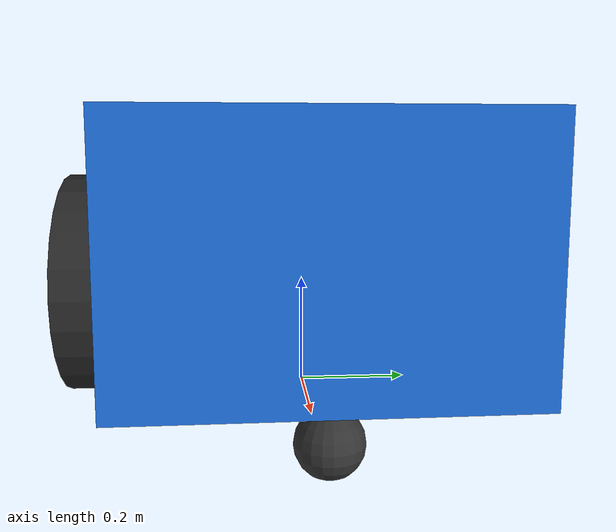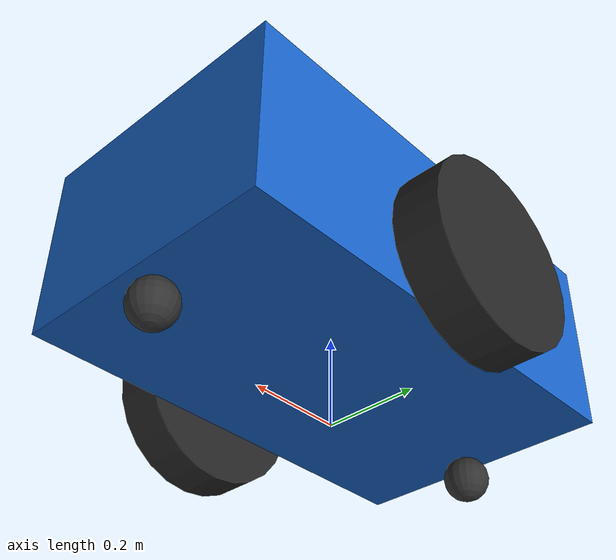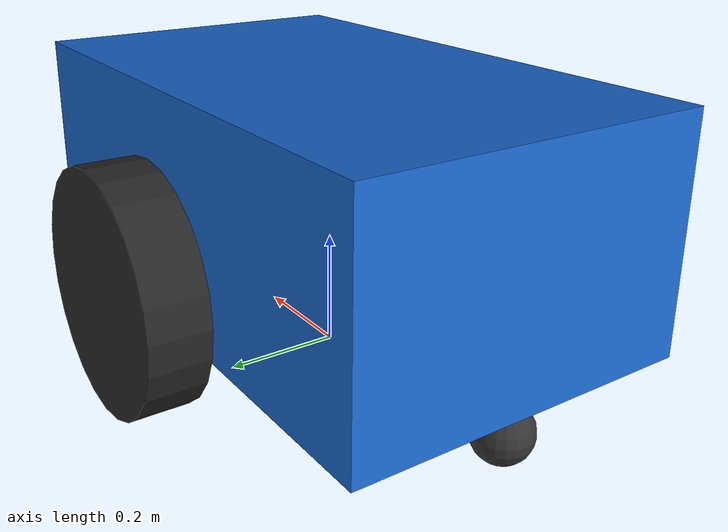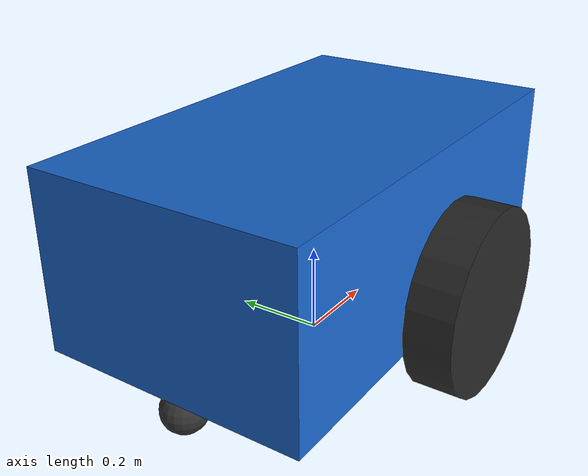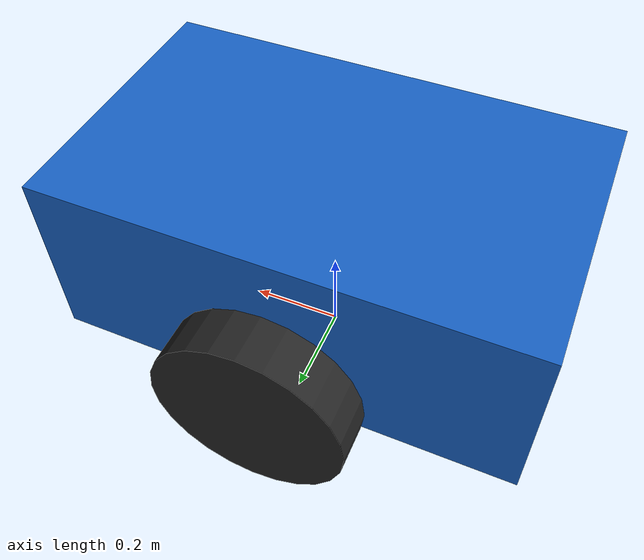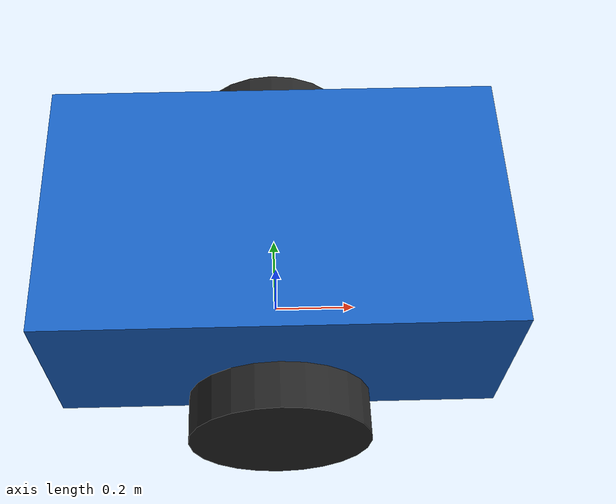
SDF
<?xml version="1.0"?>
<sdf version="1.9">

  <model name="my_robot">
    <static>false</static>

    <!-- BODY -->
    <link name="base_link">
      <pose>0 0 0.30 0 0 0</pose>
      <inertial>
        <mass>10.0</mass>
        <inertia>
          <ixx>0.4333</ixx>
          <iyy>0.9667</iyy>
          <izz>1.1333</izz>
          <ixy>0</ixy>
          <ixz>0</ixz>
          <iyz>0</iyz>
        </inertia>
      </inertial>
      <collision name="base_collision">
        <geometry>
          <box>
            <size>1.0 0.6 0.4</size>
          </box>
        </geometry>
      </collision>
      <visual name="base_visual">
        <geometry>
          <box>
            <size>1.0 0.6 0.4</size>
          </box>
        </geometry>
        <material>
          <ambient>0.1 0.4 0.8 1</ambient>
          <diffuse>0.1 0.4 0.8 1</diffuse>
        </material>
      </visual>
    </link>

    <!-- LEFT WHEEL -->
    <link name="left_wheel">
      <pose>0 0.38 0.20 0 0 0</pose>
      <inertial>
        <pose>0 0 0 1.570796 0 0</pose>
        <mass>1.0</mass>
        <inertia>
          <ixx>0.0108</ixx>
          <iyy>0.0108</iyy>
          <izz>0.02</izz>
          <ixy>0</ixy>
          <ixz>0</ixz>
          <iyz>0</iyz>
        </inertia>
      </inertial>
      <collision name="left_wheel_collision">
        <pose>0 0 0 1.570796 0 0</pose>
        <geometry>
          <cylinder>
            <radius>0.20</radius>
            <length>0.10</length>
          </cylinder>
        </geometry>
        <surface>
          <friction>
            <ode>
              <mu>2.0</mu>
              <mu2>2.0</mu2>
            </ode>
          </friction>
        </surface>
      </collision>
      <visual name="left_wheel_visual">
        <pose>0 0 0 1.570796 0 0</pose>
        <geometry>
          <cylinder>
            <radius>0.20</radius>
            <length>0.10</length>
          </cylinder>
        </geometry>
        <material>
          <ambient>0.15 0.15 0.15 1</ambient>
          <diffuse>0.15 0.15 0.15 1</diffuse>
        </material>
      </visual>
    </link>

    <!-- RIGHT WHEEL -->
    <link name="right_wheel">
      <pose>0 -0.38 0.20 0 0 0</pose>
      <inertial>
        <pose>0 0 0 1.570796 0 0</pose>
        <mass>1.0</mass>
        <inertia>
          <ixx>0.0108</ixx>
          <iyy>0.0108</iyy>
          <izz>0.02</izz>
          <ixy>0</ixy>
          <ixz>0</ixz>
          <iyz>0</iyz>
        </inertia>
      </inertial>
      <collision name="right_wheel_collision">
        <pose>0 0 0 1.570796 0 0</pose>
        <geometry>
          <cylinder>
            <radius>0.20</radius>
            <length>0.10</length>
          </cylinder>
        </geometry>
        <surface>
          <friction>
            <ode>
              <mu>2.0</mu>
              <mu2>2.0</mu2>
            </ode>
          </friction>
        </surface>
      </collision>
      <visual name="right_wheel_visual">
        <pose>0 0 0 1.570796 0 0</pose>
        <geometry>
          <cylinder>
            <radius>0.20</radius>
            <length>0.10</length>
          </cylinder>
        </geometry>
        <material>
          <ambient>0.15 0.15 0.15 1</ambient>
          <diffuse>0.15 0.15 0.15 1</diffuse>
        </material>
      </visual>
    </link>

    <!-- CASTER DEPAN -->
    <link name="caster_front">
      <pose>0.45 0 0.05 0 0 0</pose>
      <inertial>
        <mass>0.3</mass>
        <inertia>
          <ixx>0.0003</ixx>
          <iyy>0.0003</iyy>
          <izz>0.0003</izz>
          <ixy>0</ixy>
          <ixz>0</ixz>
          <iyz>0</iyz>
        </inertia>
      </inertial>
      <collision name="caster_front_collision">
        <geometry>
          <sphere>
            <radius>0.05</radius>
          </sphere>
        </geometry>
        <surface>
          <friction>
            <ode>
              <mu>0.01</mu>
              <mu2>0.01</mu2>
            </ode>
          </friction>
        </surface>
      </collision>
      <visual name="caster_front_visual">
        <geometry>
          <sphere>
            <radius>0.05</radius>
          </sphere>
        </geometry>
        <material>
          <ambient>0.2 0.2 0.2 1</ambient>
          <diffuse>0.2 0.2 0.2 1</diffuse>
        </material>
      </visual>
    </link>

    <joint name="caster_front_joint" type="fixed">
      <parent>base_link</parent>
      <child>caster_front</child>
    </joint>

    <!-- CASTER BELAKANG -->
    <link name="caster_rear">
      <pose>-0.45 0 0.05 0 0 0</pose>
      <inertial>
        <mass>0.3</mass>
        <inertia>
          <ixx>0.0003</ixx>
          <iyy>0.0003</iyy>
          <izz>0.0003</izz>
          <ixy>0</ixy>
          <ixz>0</ixz>
          <iyz>0</iyz>
        </inertia>
      </inertial>
      <collision name="caster_rear_collision">
        <geometry>
          <sphere>
            <radius>0.05</radius>
          </sphere>
        </geometry>
        <surface>
          <friction>
            <ode>
              <mu>0.01</mu>
              <mu2>0.01</mu2>
            </ode>
          </friction>
        </surface>
      </collision>
      <visual name="caster_rear_visual">
        <geometry>
          <sphere>
            <radius>0.05</radius>
          </sphere>
        </geometry>
        <material>
          <ambient>0.2 0.2 0.2 1</ambient>
          <diffuse>0.2 0.2 0.2 1</diffuse>
        </material>
      </visual>
    </link>

    <joint name="caster_rear_joint" type="fixed">
      <parent>base_link</parent>
      <child>caster_rear</child>
    </joint>

    <!-- LEFT WHEEL JOINT -->
    <joint name="left_wheel_joint" type="revolute">
      <parent>base_link</parent>
      <child>left_wheel</child>
      <axis>
        <xyz>0 1 0</xyz>
        <dynamics>
          <damping>0.05</damping>
        </dynamics>
        <limit>
          <lower>-1e16</lower>
          <upper>1e16</upper>
        </limit>
      </axis>
    </joint>

    <!-- RIGHT WHEEL JOINT -->
    <joint name="right_wheel_joint" type="revolute">
      <parent>base_link</parent>
      <child>right_wheel</child>
      <axis>
        <xyz>0 1 0</xyz>
        <dynamics>
          <damping>0.05</damping>
        </dynamics>
        <limit>
          <lower>-1e16</lower>
          <upper>1e16</upper>
        </limit>
      </axis>
    </joint>

    <!-- DIFFERENTIAL DRIVE -->
    <plugin
      filename="gz-sim-diff-drive-system"
      name="gz::sim::systems::DiffDrive">
      <left_joint>left_wheel_joint</left_joint>
      <right_joint>right_wheel_joint</right_joint>
      <wheel_separation>0.76</wheel_separation>
      <wheel_radius>0.20</wheel_radius>
      <max_linear_acceleration>2.0</max_linear_acceleration>
      <min_linear_acceleration>-2.0</min_linear_acceleration>
      <max_angular_acceleration>4.0</max_angular_acceleration>
      <min_angular_acceleration>-4.0</min_angular_acceleration>
      <max_linear_velocity>1.5</max_linear_velocity>
      <min_linear_velocity>-1.5</min_linear_velocity>
      <max_angular_velocity>2.0</max_angular_velocity>
      <min_angular_velocity>-2.0</min_angular_velocity>
      <topic>/cmd_vel</topic>
      <odom_topic>/odom</odom_topic>
      <odom_publish_frequency>50</odom_publish_frequency>
      <frame_id>odom</frame_id>
      <child_frame_id>base_link</child_frame_id>
      <tf_topic>/tf</tf_topic>
    </plugin>

  </model>

</sdf>
